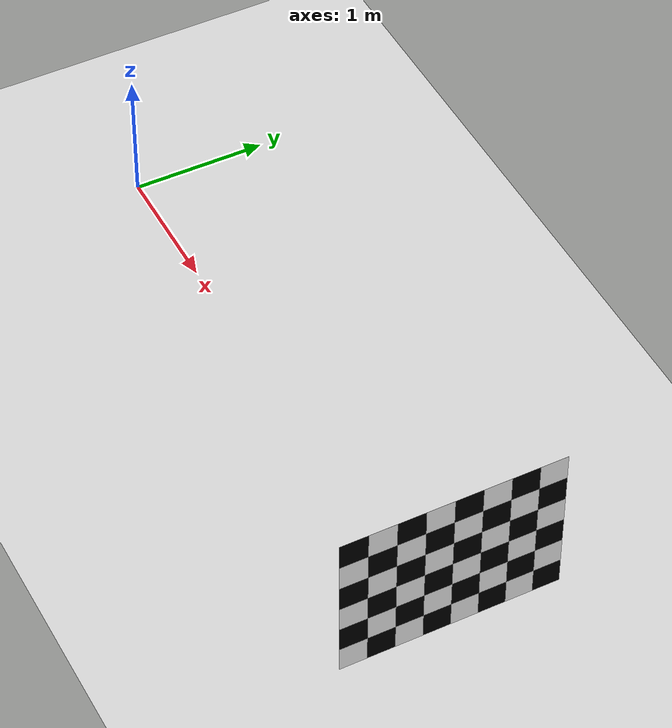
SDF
<sdf version="1.7">
 <world name="default">
  <light name="sun" type="directional">
   <pose>0 0 10 0 -0 0</pose>
   <diffuse>0.8 0.8 0.8 1</diffuse>
   <specular>0.2 0.2 0.2 1</specular>
   <attenuation>
    <range>1000</range>
    <constant>0.9</constant>
    <linear>0.01</linear>
    <quadratic>0.001</quadratic>
   </attenuation>
   <direction>-0.5 0.1 -0.9</direction>
   <spot><inner_angle>0</inner_angle><outer_angle>0</outer_angle><falloff>0</falloff></spot>
  </light>
  <model name="ground_plane">
   <static>1</static>
   <link name="link">
    <collision name="collision">
     <geometry><plane><normal>0 0 1</normal><size>100 100</size></plane></geometry>
     <surface><friction><ode><mu>100</mu><mu2>50</mu2></ode></friction></surface>
    </collision>
    <visual name="visual">
     <cast_shadows>0</cast_shadows>
     <geometry><plane><normal>0 0 1</normal><size>100 100</size></plane></geometry>
     <material>
      <script><uri>file://media/materials/scripts/gazebo.material</uri><name>Gazebo/Grey</name></script>
     </material>
    </visual>
   </link>
  </model>
  <model name="checkerboard_6_8_0_2">
   <static>1</static>
   <link name="checkerboard_6_8_0_2_body">
    <visual name="checker_0_0">
     <pose>-0.5 -0.7 0 0 -0 0</pose>
     <geometry><box><size>0.2 0.2 0.0002</size></box></geometry>
     <material>
      <ambient>0 0 0 1</ambient>
      <diffuse>0 0 0 1</diffuse>
      <specular>0 0 0 1</specular>
      <emissive>0 0 0 1</emissive>
     </material>
    </visual>
    <visual name="checker_0_1">
     <pose>-0.5 -0.5 0 0 -0 0</pose>
     <geometry><box><size>0.2 0.2 0.0002</size></box></geometry>
     <material>
      <ambient>1 1 1 1</ambient>
      <diffuse>1 1 1 1</diffuse>
      <specular>1 1 1 1</specular>
      <emissive>1 1 1 1</emissive>
     </material>
    </visual>
    <visual name="checker_0_2">
     <pose>-0.5 -0.3 0 0 -0 0</pose>
     <geometry><box><size>0.2 0.2 0.0002</size></box></geometry>
     <material>
      <ambient>0 0 0 1</ambient>
      <diffuse>0 0 0 1</diffuse>
      <specular>0 0 0 1</specular>
      <emissive>0 0 0 1</emissive>
     </material>
    </visual>
    <visual name="checker_0_3">
     <pose>-0.5 -0.1 0 0 -0 0</pose>
     <geometry><box><size>0.2 0.2 0.0002</size></box></geometry>
     <material>
      <ambient>1 1 1 1</ambient>
      <diffuse>1 1 1 1</diffuse>
      <specular>1 1 1 1</specular>
      <emissive>1 1 1 1</emissive>
     </material>
    </visual>
    <visual name="checker_0_4">
     <pose>-0.5 0.1 0 0 -0 0</pose>
     <geometry><box><size>0.2 0.2 0.0002</size></box></geometry>
     <material>
      <ambient>0 0 0 1</ambient>
      <diffuse>0 0 0 1</diffuse>
      <specular>0 0 0 1</specular>
      <emissive>0 0 0 1</emissive>
     </material>
    </visual>
    <visual name="checker_0_5">
     <pose>-0.5 0.3 0 0 -0 0</pose>
     <geometry><box><size>0.2 0.2 0.0002</size></box></geometry>
     <material>
      <ambient>1 1 1 1</ambient>
      <diffuse>1 1 1 1</diffuse>
      <specular>1 1 1 1</specular>
      <emissive>1 1 1 1</emissive>
     </material>
    </visual>
    <visual name="checker_0_6">
     <pose>-0.5 0.5 0 0 -0 0</pose>
     <geometry><box><size>0.2 0.2 0.0002</size></box></geometry>
     <material>
      <ambient>0 0 0 1</ambient>
      <diffuse>0 0 0 1</diffuse>
      <specular>0 0 0 1</specular>
      <emissive>0 0 0 1</emissive>
     </material>
    </visual>
    <visual name="checker_0_7">
     <pose>-0.5 0.7 0 0 -0 0</pose>
     <geometry><box><size>0.2 0.2 0.0002</size></box></geometry>
     <material>
      <ambient>1 1 1 1</ambient>
      <diffuse>1 1 1 1</diffuse>
      <specular>1 1 1 1</specular>
      <emissive>1 1 1 1</emissive>
     </material>
    </visual>
    <visual name="checker_1_0">
     <pose>-0.3 -0.7 0 0 -0 0</pose>
     <geometry><box><size>0.2 0.2 0.0002</size></box></geometry>
     <material>
      <ambient>1 1 1 1</ambient>
      <diffuse>1 1 1 1</diffuse>
      <specular>1 1 1 1</specular>
      <emissive>1 1 1 1</emissive>
     </material>
    </visual>
    <visual name="checker_1_1">
     <pose>-0.3 -0.5 0 0 -0 0</pose>
     <geometry><box><size>0.2 0.2 0.0002</size></box></geometry>
     <material>
      <ambient>0 0 0 1</ambient>
      <diffuse>0 0 0 1</diffuse>
      <specular>0 0 0 1</specular>
      <emissive>0 0 0 1</emissive>
     </material>
    </visual>
    <visual name="checker_1_2">
     <pose>-0.3 -0.3 0 0 -0 0</pose>
     <geometry><box><size>0.2 0.2 0.0002</size></box></geometry>
     <material>
      <ambient>1 1 1 1</ambient>
      <diffuse>1 1 1 1</diffuse>
      <specular>1 1 1 1</specular>
      <emissive>1 1 1 1</emissive>
     </material>
    </visual>
    <visual name="checker_1_3">
     <pose>-0.3 -0.1 0 0 -0 0</pose>
     <geometry><box><size>0.2 0.2 0.0002</size></box></geometry>
     <material>
      <ambient>0 0 0 1</ambient>
      <diffuse>0 0 0 1</diffuse>
      <specular>0 0 0 1</specular>
      <emissive>0 0 0 1</emissive>
     </material>
    </visual>
    <visual name="checker_1_4">
     <pose>-0.3 0.1 0 0 -0 0</pose>
     <geometry><box><size>0.2 0.2 0.0002</size></box></geometry>
     <material>
      <ambient>1 1 1 1</ambient>
      <diffuse>1 1 1 1</diffuse>
      <specular>1 1 1 1</specular>
      <emissive>1 1 1 1</emissive>
     </material>
    </visual>
    <visual name="checker_1_5">
     <pose>-0.3 0.3 0 0 -0 0</pose>
     <geometry><box><size>0.2 0.2 0.0002</size></box></geometry>
     <material>
      <ambient>0 0 0 1</ambient>
      <diffuse>0 0 0 1</diffuse>
      <specular>0 0 0 1</specular>
      <emissive>0 0 0 1</emissive>
     </material>
    </visual>
    <visual name="checker_1_6">
     <pose>-0.3 0.5 0 0 -0 0</pose>
     <geometry><box><size>0.2 0.2 0.0002</size></box></geometry>
     <material>
      <ambient>1 1 1 1</ambient>
      <diffuse>1 1 1 1</diffuse>
      <specular>1 1 1 1</specular>
      <emissive>1 1 1 1</emissive>
     </material>
    </visual>
    <visual name="checker_1_7">
     <pose>-0.3 0.7 0 0 -0 0</pose>
     <geometry><box><size>0.2 0.2 0.0002</size></box></geometry>
     <material>
      <ambient>0 0 0 1</ambient>
      <diffuse>0 0 0 1</diffuse>
      <specular>0 0 0 1</specular>
      <emissive>0 0 0 1</emissive>
     </material>
    </visual>
    <visual name="checker_2_0">
     <pose>-0.1 -0.7 0 0 -0 0</pose>
     <geometry><box><size>0.2 0.2 0.0002</size></box></geometry>
     <material>
      <ambient>0 0 0 1</ambient>
      <diffuse>0 0 0 1</diffuse>
      <specular>0 0 0 1</specular>
      <emissive>0 0 0 1</emissive>
     </material>
    </visual>
    <visual name="checker_2_1">
     <pose>-0.1 -0.5 0 0 -0 0</pose>
     <geometry><box><size>0.2 0.2 0.0002</size></box></geometry>
     <material>
      <ambient>1 1 1 1</ambient>
      <diffuse>1 1 1 1</diffuse>
      <specular>1 1 1 1</specular>
      <emissive>1 1 1 1</emissive>
     </material>
    </visual>
    <visual name="checker_2_2">
     <pose>-0.1 -0.3 0 0 -0 0</pose>
     <geometry><box><size>0.2 0.2 0.0002</size></box></geometry>
     <material>
      <ambient>0 0 0 1</ambient>
      <diffuse>0 0 0 1</diffuse>
      <specular>0 0 0 1</specular>
      <emissive>0 0 0 1</emissive>
     </material>
    </visual>
    <visual name="checker_2_3">
     <pose>-0.1 -0.1 0 0 -0 0</pose>
     <geometry><box><size>0.2 0.2 0.0002</size></box></geometry>
     <material>
      <ambient>1 1 1 1</ambient>
      <diffuse>1 1 1 1</diffuse>
      <specular>1 1 1 1</specular>
      <emissive>1 1 1 1</emissive>
     </material>
    </visual>
    <visual name="checker_2_4">
     <pose>-0.1 0.1 0 0 -0 0</pose>
     <geometry><box><size>0.2 0.2 0.0002</size></box></geometry>
     <material>
      <ambient>0 0 0 1</ambient>
      <diffuse>0 0 0 1</diffuse>
      <specular>0 0 0 1</specular>
      <emissive>0 0 0 1</emissive>
     </material>
    </visual>
    <visual name="checker_2_5">
     <pose>-0.1 0.3 0 0 -0 0</pose>
     <geometry><box><size>0.2 0.2 0.0002</size></box></geometry>
     <material>
      <ambient>1 1 1 1</ambient>
      <diffuse>1 1 1 1</diffuse>
      <specular>1 1 1 1</specular>
      <emissive>1 1 1 1</emissive>
     </material>
    </visual>
    <visual name="checker_2_6">
     <pose>-0.1 0.5 0 0 -0 0</pose>
     <geometry><box><size>0.2 0.2 0.0002</size></box></geometry>
     <material>
      <ambient>0 0 0 1</ambient>
      <diffuse>0 0 0 1</diffuse>
      <specular>0 0 0 1</specular>
      <emissive>0 0 0 1</emissive>
     </material>
    </visual>
    <visual name="checker_2_7">
     <pose>-0.1 0.7 0 0 -0 0</pose>
     <geometry><box><size>0.2 0.2 0.0002</size></box></geometry>
     <material>
      <ambient>1 1 1 1</ambient>
      <diffuse>1 1 1 1</diffuse>
      <specular>1 1 1 1</specular>
      <emissive>1 1 1 1</emissive>
     </material>
    </visual>
    <visual name="checker_3_0">
     <pose>0.1 -0.7 0 0 -0 0</pose>
     <geometry><box><size>0.2 0.2 0.0002</size></box></geometry>
     <material>
      <ambient>1 1 1 1</ambient>
      <diffuse>1 1 1 1</diffuse>
      <specular>1 1 1 1</specular>
      <emissive>1 1 1 1</emissive>
     </material>
    </visual>
    <visual name="checker_3_1">
     <pose>0.1 -0.5 0 0 -0 0</pose>
     <geometry><box><size>0.2 0.2 0.0002</size></box></geometry>
     <material>
      <ambient>0 0 0 1</ambient>
      <diffuse>0 0 0 1</diffuse>
      <specular>0 0 0 1</specular>
      <emissive>0 0 0 1</emissive>
     </material>
    </visual>
    <visual name="checker_3_2">
     <pose>0.1 -0.3 0 0 -0 0</pose>
     <geometry><box><size>0.2 0.2 0.0002</size></box></geometry>
     <material>
      <ambient>1 1 1 1</ambient>
      <diffuse>1 1 1 1</diffuse>
      <specular>1 1 1 1</specular>
      <emissive>1 1 1 1</emissive>
     </material>
    </visual>
    <visual name="checker_3_3">
     <pose>0.1 -0.1 0 0 -0 0</pose>
     <geometry><box><size>0.2 0.2 0.0002</size></box></geometry>
     <material>
      <ambient>0 0 0 1</ambient>
      <diffuse>0 0 0 1</diffuse>
      <specular>0 0 0 1</specular>
      <emissive>0 0 0 1</emissive>
     </material>
    </visual>
    <visual name="checker_3_4">
     <pose>0.1 0.1 0 0 -0 0</pose>
     <geometry><box><size>0.2 0.2 0.0002</size></box></geometry>
     <material>
      <ambient>1 1 1 1</ambient>
      <diffuse>1 1 1 1</diffuse>
      <specular>1 1 1 1</specular>
      <emissive>1 1 1 1</emissive>
     </material>
    </visual>
    <visual name="checker_3_5">
     <pose>0.1 0.3 0 0 -0 0</pose>
     <geometry><box><size>0.2 0.2 0.0002</size></box></geometry>
     <material>
      <ambient>0 0 0 1</ambient>
      <diffuse>0 0 0 1</diffuse>
      <specular>0 0 0 1</specular>
      <emissive>0 0 0 1</emissive>
     </material>
    </visual>
    <visual name="checker_3_6">
     <pose>0.1 0.5 0 0 -0 0</pose>
     <geometry><box><size>0.2 0.2 0.0002</size></box></geometry>
     <material>
      <ambient>1 1 1 1</ambient>
      <diffuse>1 1 1 1</diffuse>
      <specular>1 1 1 1</specular>
      <emissive>1 1 1 1</emissive>
     </material>
    </visual>
    <visual name="checker_3_7">
     <pose>0.1 0.7 0 0 -0 0</pose>
     <geometry><box><size>0.2 0.2 0.0002</size></box></geometry>
     <material>
      <ambient>0 0 0 1</ambient>
      <diffuse>0 0 0 1</diffuse>
      <specular>0 0 0 1</specular>
      <emissive>0 0 0 1</emissive>
     </material>
    </visual>
    <visual name="checker_4_0">
     <pose>0.3 -0.7 0 0 -0 0</pose>
     <geometry><box><size>0.2 0.2 0.0002</size></box></geometry>
     <material>
      <ambient>0 0 0 1</ambient>
      <diffuse>0 0 0 1</diffuse>
      <specular>0 0 0 1</specular>
      <emissive>0 0 0 1</emissive>
     </material>
    </visual>
    <visual name="checker_4_1">
     <pose>0.3 -0.5 0 0 -0 0</pose>
     <geometry><box><size>0.2 0.2 0.0002</size></box></geometry>
     <material>
      <ambient>1 1 1 1</ambient>
      <diffuse>1 1 1 1</diffuse>
      <specular>1 1 1 1</specular>
      <emissive>1 1 1 1</emissive>
     </material>
    </visual>
    <visual name="checker_4_2">
     <pose>0.3 -0.3 0 0 -0 0</pose>
     <geometry><box><size>0.2 0.2 0.0002</size></box></geometry>
     <material>
      <ambient>0 0 0 1</ambient>
      <diffuse>0 0 0 1</diffuse>
      <specular>0 0 0 1</specular>
      <emissive>0 0 0 1</emissive>
     </material>
    </visual>
    <visual name="checker_4_3">
     <pose>0.3 -0.1 0 0 -0 0</pose>
     <geometry><box><size>0.2 0.2 0.0002</size></box></geometry>
     <material>
      <ambient>1 1 1 1</ambient>
      <diffuse>1 1 1 1</diffuse>
      <specular>1 1 1 1</specular>
      <emissive>1 1 1 1</emissive>
     </material>
    </visual>
    <visual name="checker_4_4">
     <pose>0.3 0.1 0 0 -0 0</pose>
     <geometry><box><size>0.2 0.2 0.0002</size></box></geometry>
     <material>
      <ambient>0 0 0 1</ambient>
      <diffuse>0 0 0 1</diffuse>
      <specular>0 0 0 1</specular>
      <emissive>0 0 0 1</emissive>
     </material>
    </visual>
    <visual name="checker_4_5">
     <pose>0.3 0.3 0 0 -0 0</pose>
     <geometry><box><size>0.2 0.2 0.0002</size></box></geometry>
     <material>
      <ambient>1 1 1 1</ambient>
      <diffuse>1 1 1 1</diffuse>
      <specular>1 1 1 1</specular>
      <emissive>1 1 1 1</emissive>
     </material>
    </visual>
    <visual name="checker_4_6">
     <pose>0.3 0.5 0 0 -0 0</pose>
     <geometry><box><size>0.2 0.2 0.0002</size></box></geometry>
     <material>
      <ambient>0 0 0 1</ambient>
      <diffuse>0 0 0 1</diffuse>
      <specular>0 0 0 1</specular>
      <emissive>0 0 0 1</emissive>
     </material>
    </visual>
    <visual name="checker_4_7">
     <pose>0.3 0.7 0 0 -0 0</pose>
     <geometry><box><size>0.2 0.2 0.0002</size></box></geometry>
     <material>
      <ambient>1 1 1 1</ambient>
      <diffuse>1 1 1 1</diffuse>
      <specular>1 1 1 1</specular>
      <emissive>1 1 1 1</emissive>
     </material>
    </visual>
    <visual name="checker_5_0">
     <pose>0.5 -0.7 0 0 -0 0</pose>
     <geometry><box><size>0.2 0.2 0.0002</size></box></geometry>
     <material>
      <ambient>1 1 1 1</ambient>
      <diffuse>1 1 1 1</diffuse>
      <specular>1 1 1 1</specular>
      <emissive>1 1 1 1</emissive>
     </material>
    </visual>
    <visual name="checker_5_1">
     <pose>0.5 -0.5 0 0 -0 0</pose>
     <geometry><box><size>0.2 0.2 0.0002</size></box></geometry>
     <material>
      <ambient>0 0 0 1</ambient>
      <diffuse>0 0 0 1</diffuse>
      <specular>0 0 0 1</specular>
      <emissive>0 0 0 1</emissive>
     </material>
    </visual>
    <visual name="checker_5_2">
     <pose>0.5 -0.3 0 0 -0 0</pose>
     <geometry><box><size>0.2 0.2 0.0002</size></box></geometry>
     <material>
      <ambient>1 1 1 1</ambient>
      <diffuse>1 1 1 1</diffuse>
      <specular>1 1 1 1</specular>
      <emissive>1 1 1 1</emissive>
     </material>
    </visual>
    <visual name="checker_5_3">
     <pose>0.5 -0.1 0 0 -0 0</pose>
     <geometry><box><size>0.2 0.2 0.0002</size></box></geometry>
     <material>
      <ambient>0 0 0 1</ambient>
      <diffuse>0 0 0 1</diffuse>
      <specular>0 0 0 1</specular>
      <emissive>0 0 0 1</emissive>
     </material>
    </visual>
    <visual name="checker_5_4">
     <pose>0.5 0.1 0 0 -0 0</pose>
     <geometry><box><size>0.2 0.2 0.0002</size></box></geometry>
     <material>
      <ambient>1 1 1 1</ambient>
      <diffuse>1 1 1 1</diffuse>
      <specular>1 1 1 1</specular>
      <emissive>1 1 1 1</emissive>
     </material>
    </visual>
    <visual name="checker_5_5">
     <pose>0.5 0.3 0 0 -0 0</pose>
     <geometry><box><size>0.2 0.2 0.0002</size></box></geometry>
     <material>
      <ambient>0 0 0 1</ambient>
      <diffuse>0 0 0 1</diffuse>
      <specular>0 0 0 1</specular>
      <emissive>0 0 0 1</emissive>
     </material>
    </visual>
    <visual name="checker_5_6">
     <pose>0.5 0.5 0 0 -0 0</pose>
     <geometry><box><size>0.2 0.2 0.0002</size></box></geometry>
     <material>
      <ambient>1 1 1 1</ambient>
      <diffuse>1 1 1 1</diffuse>
      <specular>1 1 1 1</specular>
      <emissive>1 1 1 1</emissive>
     </material>
    </visual>
    <visual name="checker_5_7">
     <pose>0.5 0.7 0 0 -0 0</pose>
     <geometry><box><size>0.2 0.2 0.0002</size></box></geometry>
     <material>
      <ambient>0 0 0 1</ambient>
      <diffuse>0 0 0 1</diffuse>
      <specular>0 0 0 1</specular>
      <emissive>0 0 0 1</emissive>
     </material>
    </visual>
    <collision name="collision"><geometry><box><size>1.2 1.6 0.0001</size></box></geometry></collision>
   </link>
   <pose>4.71367 0.033303 0.717275 0 1.57 0</pose>
  </model>
  <model name="camera">
   <pose>-0.005062 4e-06 0.004992 -0.000334 0 -0.00017</pose>
   <link name="link">
    <inertial>
     <mass>0.0001</mass>
     <inertia>
      <ixx>0.000166667</ixx>
      <iyy>0.000166667</iyy>
      <izz>0.000166667</izz>
      <ixy>0</ixy>
      <ixz>0</ixz>
      <iyz>0</iyz>
     </inertia>
    </inertial>
    <collision name="collision"><geometry><box><size>0.01 0.01 0.01</size></box></geometry></collision>
    <visual name="visual"><geometry><box><size>0.01 0.01 0.01</size></box></geometry></visual>
    <sensor name="camera" type="camera">
     <camera>
      <horizontal_fov>1.047</horizontal_fov>
      <image><width>640</width><height>480</height></image>
      <clip><near>0.1</near><far>100</far></clip>
     </camera>
     <plugin name="gazebo_camera" filename="libgazebo_ros_camera.so">
      <alwaysOn>1</alwaysOn>
      <updateRate>0.0</updateRate>
      <cameraName>/camera</cameraName>
      <imageTopicName>/downward_camera/image_raw</imageTopicName>
      <cameraInfoTopicName>camera_info</cameraInfoTopicName>
      <frameName>camera</frameName>
      <hackBaseline>0.07</hackBaseline>
      <distortionK1>0.0</distortionK1>
      <distortionK2>0.0</distortionK2>
      <distortionK3>0.0</distortionK3>
      <distortionT1>0.0</distortionT1>
      <distortionT2>0.0</distortionT2>
     </plugin>
     <update_rate>30</update_rate>
     <visualize>1</visualize>
    </sensor>
   </link>
  </model>
  <gravity>0 0 -9.8</gravity>
  <magnetic_field>6e-06 2.3e-05 -4.2e-05</magnetic_field>
  <atmosphere type="adiabatic"/>
  <physics type="ode">
   <max_step_size>0.001</max_step_size>
   <real_time_factor>1</real_time_factor>
   <real_time_update_rate>1000</real_time_update_rate>
  </physics>
  <scene><ambient>0.4 0.4 0.4 1</ambient><background>0.7 0.7 0.7 1</background><shadows>1</shadows></scene>
  <spherical_coordinates>
   <surface_model>EARTH_WGS84</surface_model>
   <latitude_deg>0</latitude_deg>
   <longitude_deg>0</longitude_deg>
   <elevation>0</elevation>
   <heading_deg>0</heading_deg>
  </spherical_coordinates>
 </world>
</sdf>
